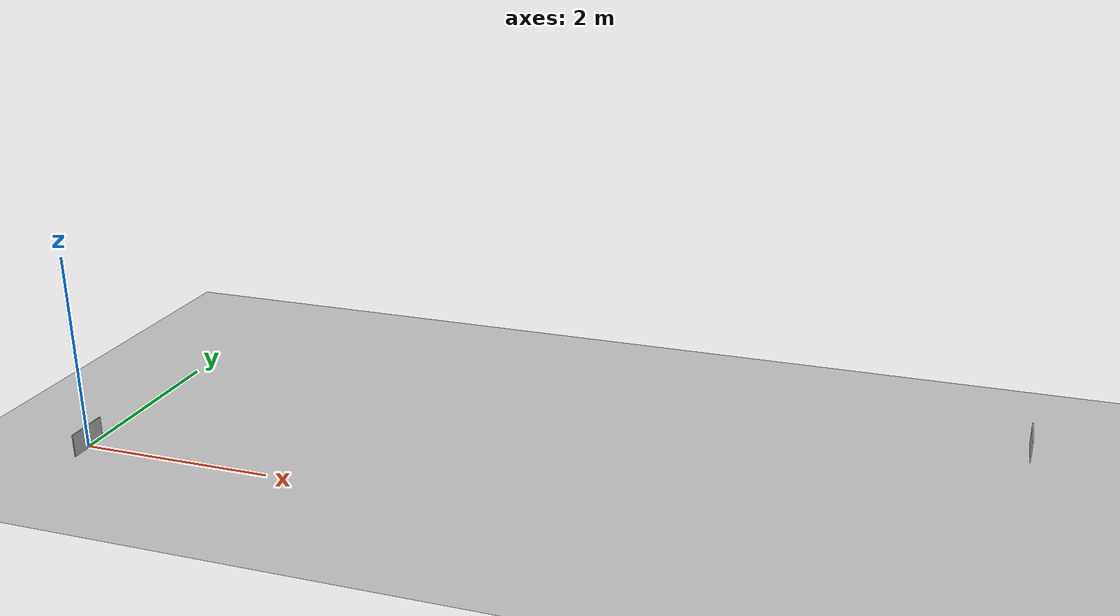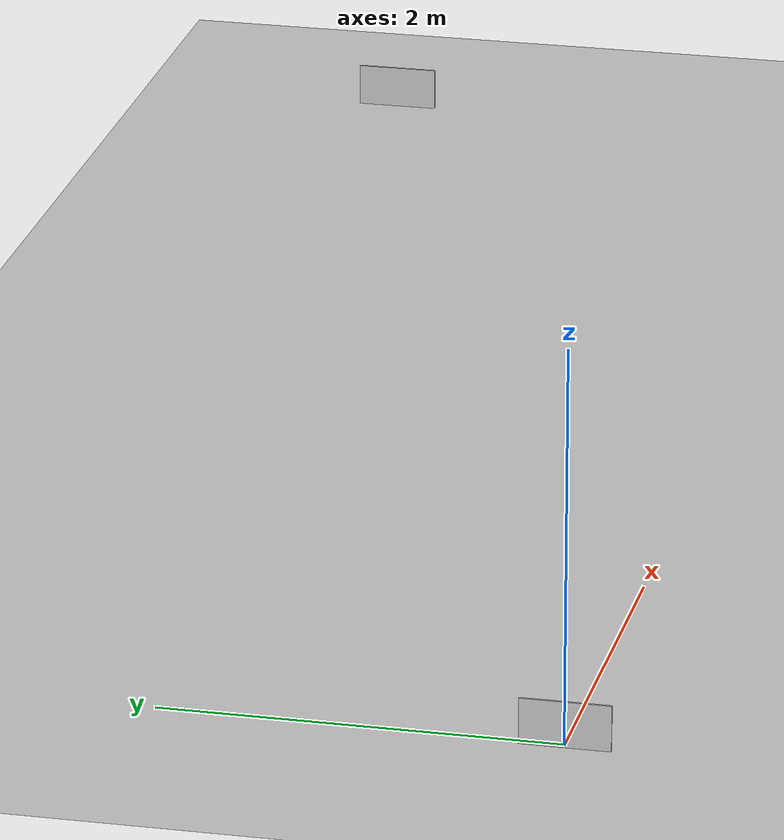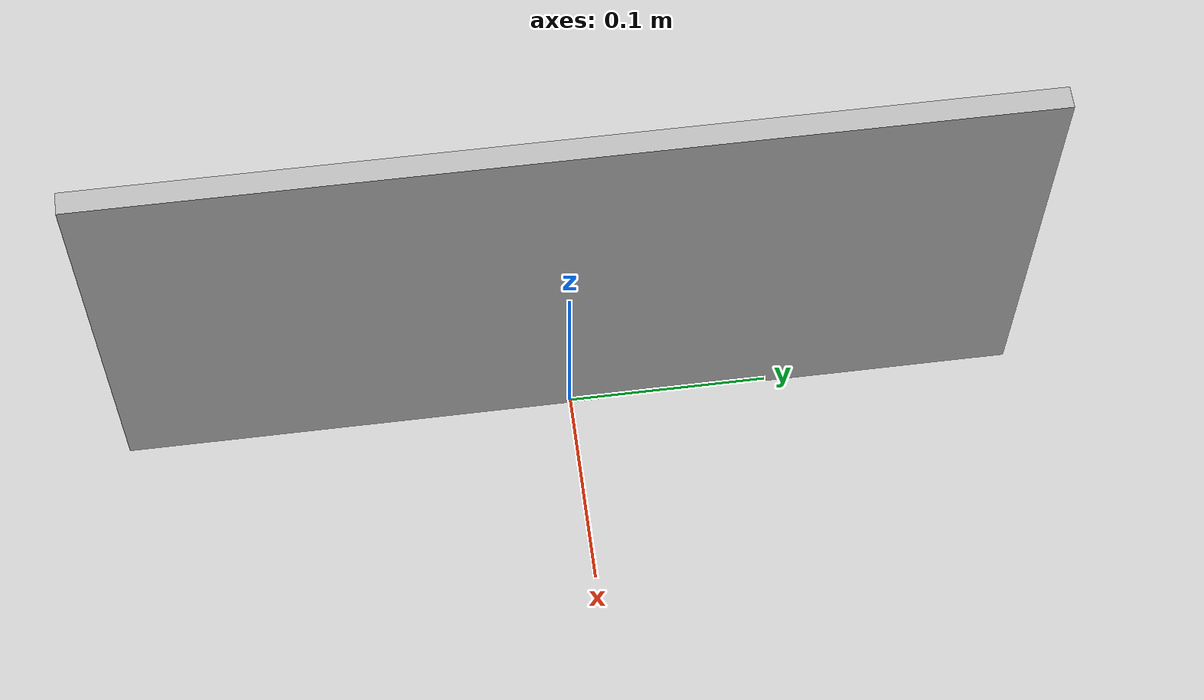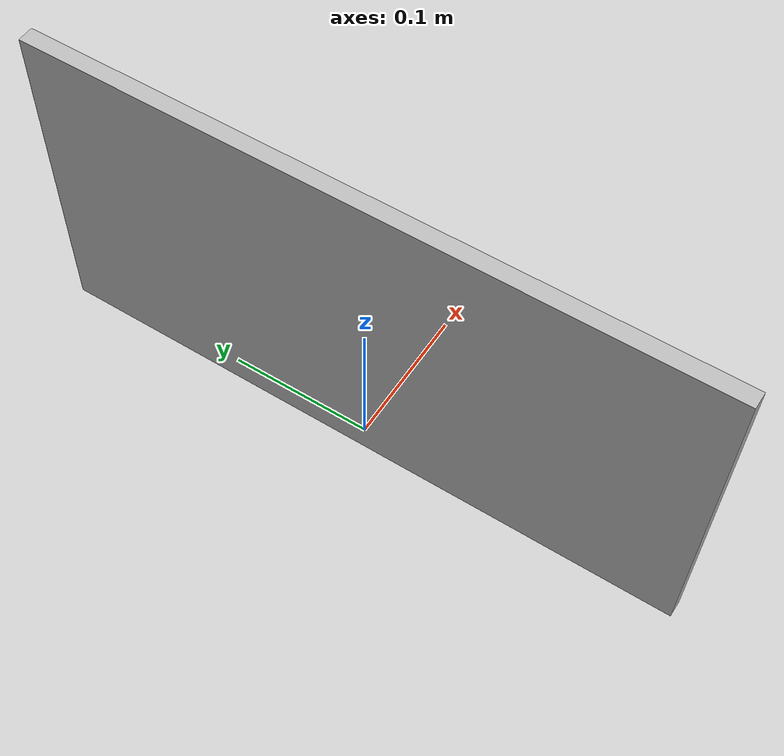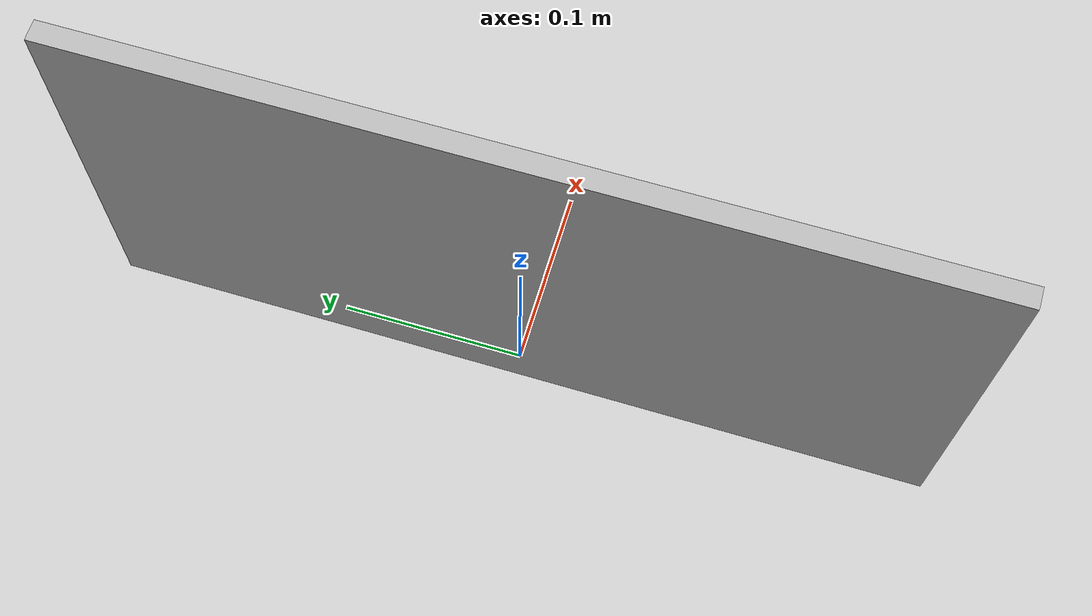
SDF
<sdf version="1.4">
 <world name="default">
  <light name="sun" type="directional">
   <pose>0 0 10 0 -0 0</pose>
   <diffuse>0.8 0.8 0.8 1</diffuse>
   <specular>0.2 0.2 0.2 1</specular>
   <attenuation>
    <range>1000</range>
    <constant>0.9</constant>
    <linear>0.01</linear>
    <quadratic>0.001</quadratic>
   </attenuation>
   <direction>-0.5 0.1 -0.9</direction>
  </light>
  <model name="ground_plane">
   <static>1</static>
   <link name="link">
    <collision name="collision">
     <geometry><plane><normal>0 0 1</normal><size>100 100</size></plane></geometry>
     <surface><friction><ode><mu>100</mu><mu2>50</mu2></ode></friction></surface>
    </collision>
    <visual name="visual">
     <cast_shadows>0</cast_shadows>
     <geometry><plane><normal>0 0 1</normal><size>100 100</size></plane></geometry>
     <material>
      <script><uri>file://media/materials/scripts/gazebo.material</uri><name>Gazebo/Grey</name></script>
     </material>
    </visual>
    <velocity_decay><linear>0</linear><angular>0</angular></velocity_decay>
   </link>
  </model>
  <physics type="ode">
   <max_step_size>0.001</max_step_size>
   <real_time_factor>1</real_time_factor>
   <real_time_update_rate>1000</real_time_update_rate>
   <gravity>0 0 -9.8</gravity>
  </physics>
  <scene><ambient>0.4 0.4 0.4 1</ambient><background>0.7 0.7 0.7 1</background><shadows>1</shadows></scene>
  <model name="marker">
   <static>1</static>
   <link name="marker_link">
    <collision name="collision">
     <geometry><mesh><uri>model://marker/meshes/artag_01.dae</uri><scale>0 0 0</scale></mesh></geometry>
    </collision>
    <visual name="visual">
     <geometry><mesh><uri>model://marker/meshes/artag_01.dae</uri><scale>10 10 10</scale></mesh></geometry>
    </visual>
    <velocity_decay><linear>0</linear><angular>0</angular></velocity_decay>
   </link>
   <pose>9.01164 2.82223 0 0 -0 0</pose>
  </model>
  <model name="marker2">
   <static>1</static>
   <link name="marker_link">
    <collision name="collision">
     <geometry><mesh><uri>model://marker/meshes/artag_01.dae</uri><scale>0 0 0</scale></mesh></geometry>
    </collision>
    <visual name="visual">
     <geometry><mesh><uri>model://marker/meshes/artag_01.dae</uri><scale>10 10 10</scale></mesh></geometry>
    </visual>
    <velocity_decay><linear>0</linear><angular>0</angular></velocity_decay>
   </link>
  </model>
 </world>
</sdf>
